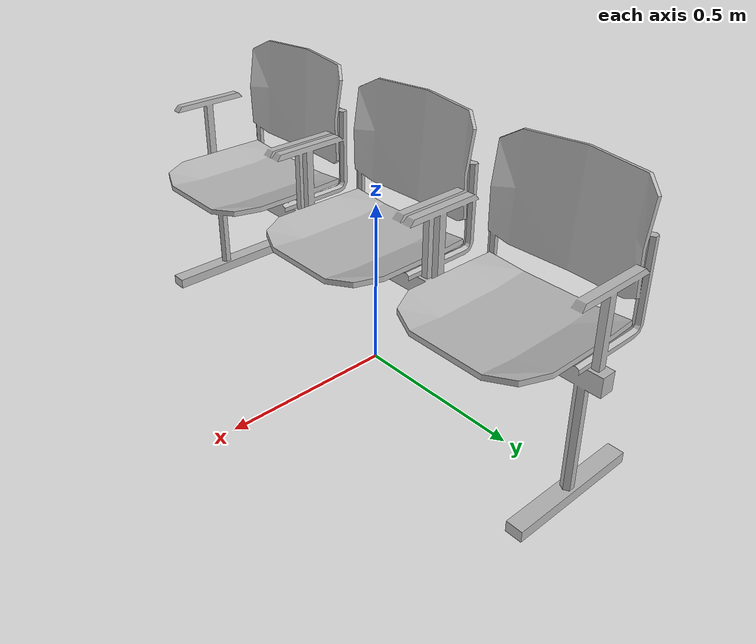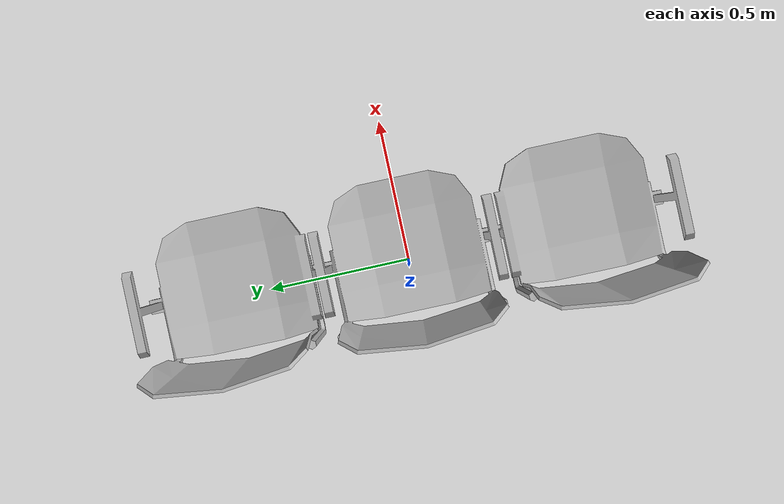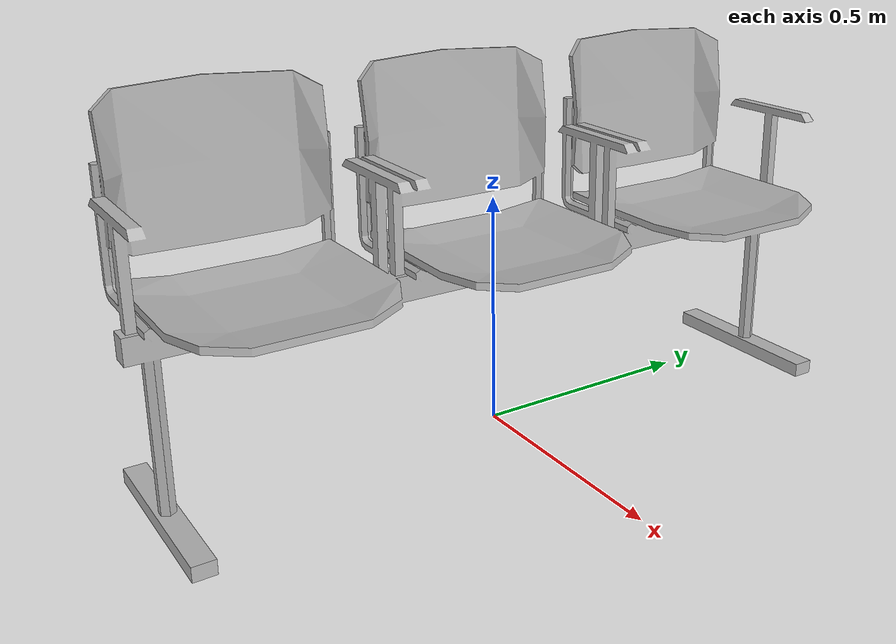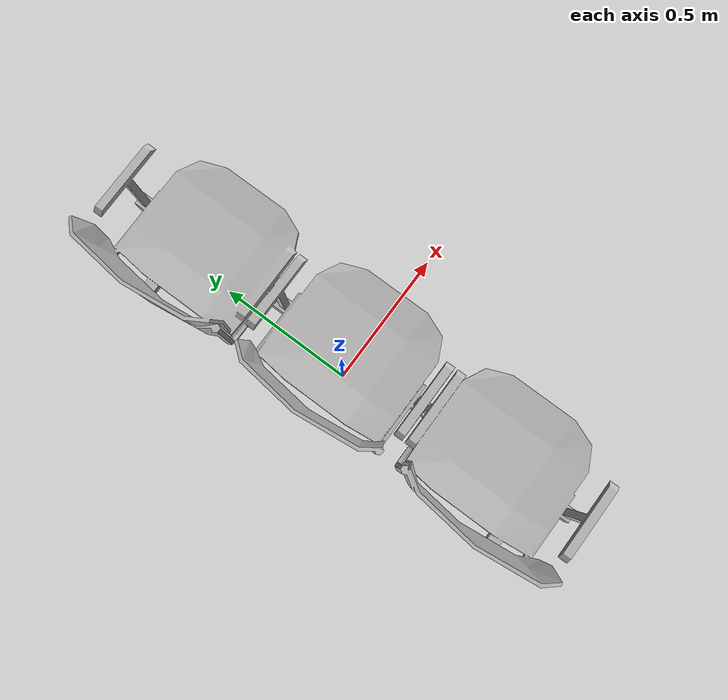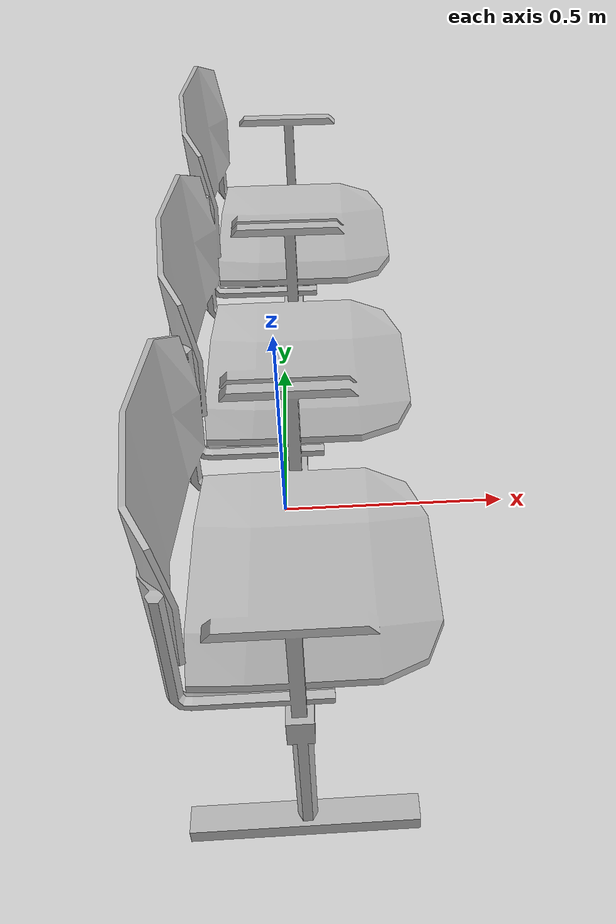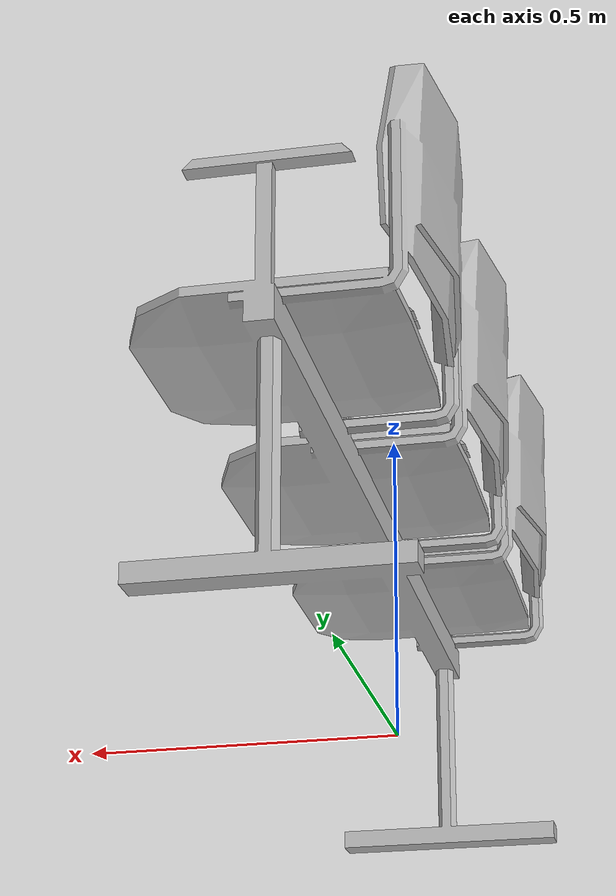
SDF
<?xml version='1.0' encoding='utf-8'?>
<sdf version="1.6">
  <model name="WhiteChipChair">
   <static>true</static>
    <link name="body">
      <pose>0 0 0 0 0 0</pose>

      <visual name="visual">
        <geometry>
          <mesh>
            <uri>model://WhiteChipChair/meshes/WhiteChipChair.obj</uri>
          </mesh>
        </geometry>
      </visual>

      <collision name="collision">
        <geometry>
          <mesh>
            <uri>model://WhiteChipChair/meshes/WhiteChipChair_Col.obj</uri>
          </mesh>
        </geometry>
      </collision>

    </link>
  </model>
</sdf>
